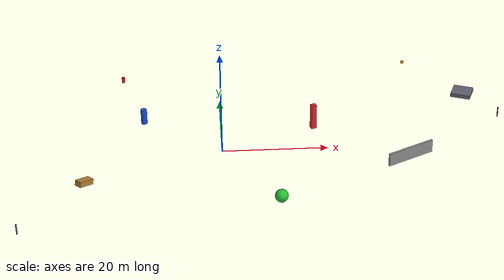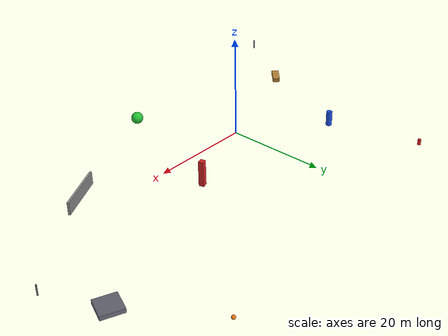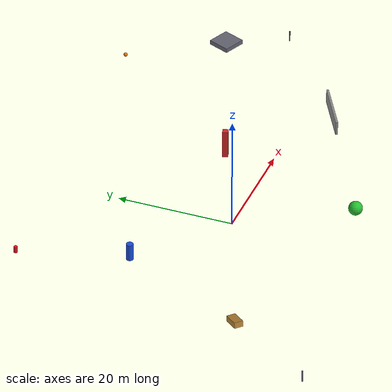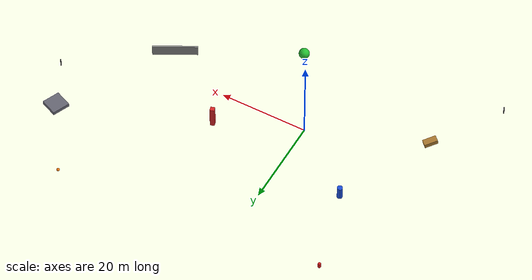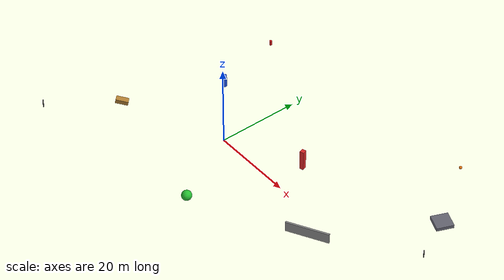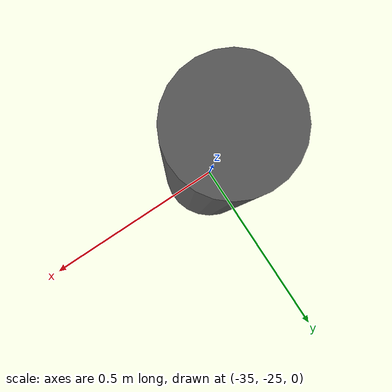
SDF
<sdf version="1.9">
 <world name="lidar_obstacle_course_harner">
  <physics name="4ms" type="dart">
   <max_step_size>0.004</max_step_size>
   <real_time_factor>1.0</real_time_factor>
  </physics>
  <plugin filename="gz-sim-physics-system" name="gz::sim::systems::Physics"/>
  <plugin filename="gz-sim-user-commands-system" name="gz::sim::systems::UserCommands"/>
  <plugin filename="gz-sim-sensors-system" name="gz::sim::systems::Sensors">
   <render_engine>ogre2</render_engine>
   <disable_on_drained_battery>true</disable_on_drained_battery>
  </plugin>
  <plugin filename="gz-sim-imu-system" name="gz::sim::systems::Imu"/>
  <plugin filename="gz-sim-magnetometer-system" name="gz::sim::systems::Magnetometer"/>
  <plugin filename="gz-sim-forcetorque-system" name="gz::sim::systems::ForceTorque"/>
  <plugin filename="gz-sim-particle-emitter2-system" name="gz::sim::systems::ParticleEmitter2"/>
  <plugin filename="gz-sim-scene-broadcaster-system" name="gz::sim::systems::SceneBroadcaster"/>
  <plugin filename="gz-sim-contact-system" name="gz::sim::systems::Contact"/>
  <plugin filename="gz-sim-navsat-system" name="gz::sim::systems::NavSat"/>
  <scene>
   <grid>false</grid>
   <ambient>1.0 1.0 1.0</ambient>
   <background>0.8 0.8 0.8</background>
   <fog><type>linear</type><color>1 1 1 1</color><start>0.1</start><end>1000</end><density>0</density></fog>
  </scene>
  <spherical_coordinates>
   <surface_model>EARTH_WGS84</surface_model>
   <world_frame_orientation>ENU</world_frame_orientation>
   <latitude_deg>40.448417</latitude_deg>
   <longitude_deg>-86.867750</longitude_deg>
   <elevation>0.0</elevation>
   <heading_deg>0.0</heading_deg>
  </spherical_coordinates>
  <light type="directional" name="sun">
   <pose>0 0 10 0 0 0</pose>
   <diffuse>0.8 0.8 0.8 1</diffuse>
   <specular>0.2 0.2 0.2 1</specular>
   <attenuation>
    <range>1000</range>
    <constant>0.9</constant>
    <linear>0.01</linear>
    <quadratic>0.001</quadratic>
   </attenuation>
   <direction>-0.5 0.1 -0.9</direction>
  </light>
  <model name="lidar_pylon_red">
   <static>true</static>
   <pose>18 8 2.5 0 0 0.3</pose>
   <link name="link">
    <collision name="collision"><geometry><box><size>1.0 1.0 5.0</size></box></geometry></collision>
    <visual name="visual">
     <geometry><box><size>1.0 1.0 5.0</size></box></geometry>
     <material><ambient>0.85 0.15 0.15 1</ambient><diffuse>0.85 0.15 0.15 1</diffuse></material>
    </visual>
   </link>
  </model>
  <model name="lidar_cylinder_blue">
   <static>true</static>
   <pose>-15 12 1.5 0 0 0</pose>
   <link name="link">
    <collision name="collision">
     <geometry><cylinder><radius>0.6</radius><length>3.0</length></cylinder></geometry>
    </collision>
    <visual name="visual">
     <geometry><cylinder><radius>0.6</radius><length>3.0</length></cylinder></geometry>
     <material><ambient>0.1 0.3 0.85 1</ambient><diffuse>0.1 0.3 0.85 1</diffuse></material>
    </visual>
   </link>
  </model>
  <model name="lidar_sphere_green">
   <static>true</static>
   <pose>10 -18 1.2 0 0 0</pose>
   <link name="link">
    <collision name="collision"><geometry><sphere><radius>1.2</radius></sphere></geometry></collision>
    <visual name="visual">
     <geometry><sphere><radius>1.2</radius></sphere></geometry>
     <material><ambient>0.15 0.75 0.2 1</ambient><diffuse>0.15 0.75 0.2 1</diffuse></material>
    </visual>
   </link>
  </model>
  <model name="lidar_wall_segment">
   <static>true</static>
   <pose>35 -5 1.25 0 0 0.5</pose>
   <link name="link">
    <collision name="collision"><geometry><box><size>10.0 0.4 2.5</size></box></geometry></collision>
    <visual name="visual">
     <geometry><box><size>10.0 0.4 2.5</size></box></geometry>
     <material><ambient>0.55 0.55 0.55 1</ambient><diffuse>0.55 0.55 0.55 1</diffuse></material>
    </visual>
   </link>
  </model>
  <model name="lidar_ramp_block">
   <static>true</static>
   <pose>-25 -10 0.5 0 0.2 0.8</pose>
   <link name="link">
    <collision name="collision"><geometry><box><size>3.0 1.5 1.0</size></box></geometry></collision>
    <visual name="visual">
     <geometry><box><size>3.0 1.5 1.0</size></box></geometry>
     <material><ambient>0.7 0.5 0.2 1</ambient><diffuse>0.7 0.5 0.2 1</diffuse></material>
    </visual>
   </link>
  </model>
  <model name="lidar_low_platform">
   <static>true</static>
   <pose>50 20 0.4 0 0 -0.4</pose>
   <link name="link">
    <collision name="collision"><geometry><box><size>4.0 4.0 0.8</size></box></geometry></collision>
    <visual name="visual">
     <geometry><box><size>4.0 4.0 0.8</size></box></geometry>
     <material><ambient>0.4 0.4 0.45 1</ambient><diffuse>0.4 0.4 0.45 1</diffuse></material>
    </visual>
   </link>
  </model>
  <model name="post_mooring_a">
   <static>true</static>
   <pose>-35 -25 1.0 0 0 0.2</pose>
   <link name="link">
    <collision name="collision">
     <geometry><cylinder><radius>0.12</radius><length>2.0</length></cylinder></geometry>
    </collision>
    <visual name="visual">
     <geometry><cylinder><radius>0.12</radius><length>2.0</length></cylinder></geometry>
     <material><ambient>0.35 0.35 0.35 1</ambient><diffuse>0.35 0.35 0.35 1</diffuse></material>
    </visual>
   </link>
  </model>
  <model name="post_mooring_b">
   <static>true</static>
   <pose>55 10 1.0 0 0 -0.5</pose>
   <link name="link">
    <collision name="collision">
     <geometry><cylinder><radius>0.12</radius><length>2.0</length></cylinder></geometry>
    </collision>
    <visual name="visual">
     <geometry><cylinder><radius>0.12</radius><length>2.0</length></cylinder></geometry>
     <material><ambient>0.35 0.35 0.35 1</ambient><diffuse>0.35 0.35 0.35 1</diffuse></material>
    </visual>
   </link>
  </model>
  <model name="mb_marker_buoy_red">
   <static>true</static>
   <pose>-20 30 0.55 0 0 0</pose>
   <link name="link">
    <collision name="collision">
     <geometry><cylinder><radius>0.325</radius><length>1.1</length></cylinder></geometry>
    </collision>
    <visual name="visual">
     <geometry><cylinder><radius>0.325</radius><length>1.1</length></cylinder></geometry>
     <material><ambient>0.85 0.1 0.1 1</ambient><diffuse>0.85 0.1 0.1 1</diffuse></material>
    </visual>
   </link>
  </model>
  <model name="mb_round_buoy_orange">
   <static>true</static>
   <pose>40 35 0.35 0 0 0</pose>
   <link name="link">
    <collision name="collision"><geometry><sphere><radius>0.35</radius></sphere></geometry></collision>
    <visual name="visual">
     <geometry><sphere><radius>0.35</radius></sphere></geometry>
     <material><ambient>0.9 0.45 0.05 1</ambient><diffuse>0.9 0.45 0.05 1</diffuse></material>
    </visual>
   </link>
  </model>
  <plugin filename="libUSVWind.so" name="vrx::USVWind">
   <wind_obj>
    <name>wamv</name>
    <link_name>wamv/base_link</link_name>
    <coeff_vector>.5 .5 .33</coeff_vector>
   </wind_obj>
   <wind_direction>240</wind_direction>
   <wind_mean_velocity>0.0</wind_mean_velocity>
   <var_wind_gain_constants>0</var_wind_gain_constants>
   <var_wind_time_constants>2</var_wind_time_constants>
   <random_seed>10</random_seed>
   <update_rate>10</update_rate>
   <topic_wind_speed>/vrx/debug/wind/speed</topic_wind_speed>
   <topic_wind_direction>/vrx/debug/wind/direction</topic_wind_direction>
  </plugin>
  <plugin filename="libPublisherPlugin.so" name="vrx::PublisherPlugin">
   <message type="gz.msgs.Param" topic="/vrx/wavefield/parameters" every="2.0">params {
          key: "direction"
          value {
            type: DOUBLE
            double_value: 0.0
          }
        }
        params {
          key: "gain"
          value {
            type: DOUBLE
            double_value: 0.00
          }
        }
        params {
          key: "period"
          value {
            type: DOUBLE
            double_value: 5
          }
        }
        params {
          key: "steepness"
          value {
            type: DOUBLE
            double_value: 0
          }
        }</message>
  </plugin>
 </world>
</sdf>
